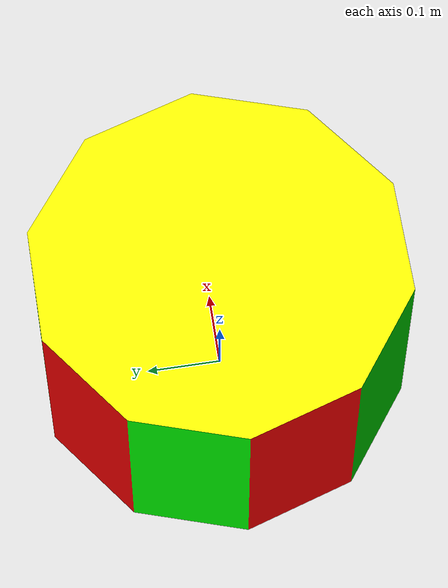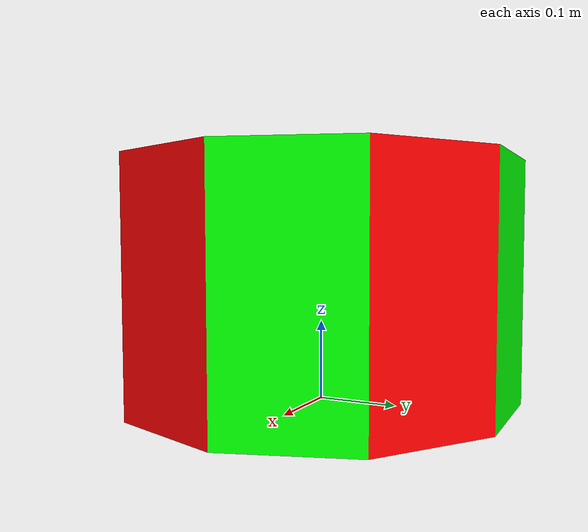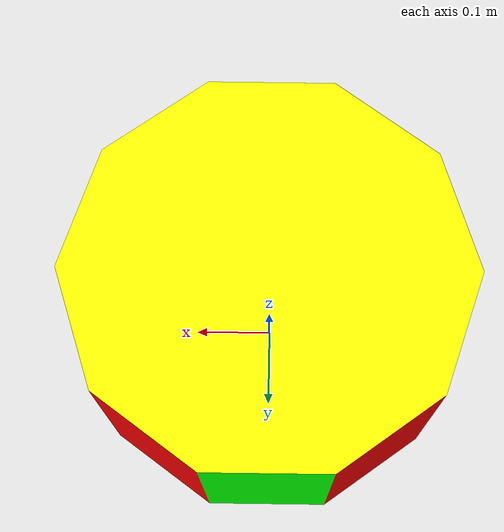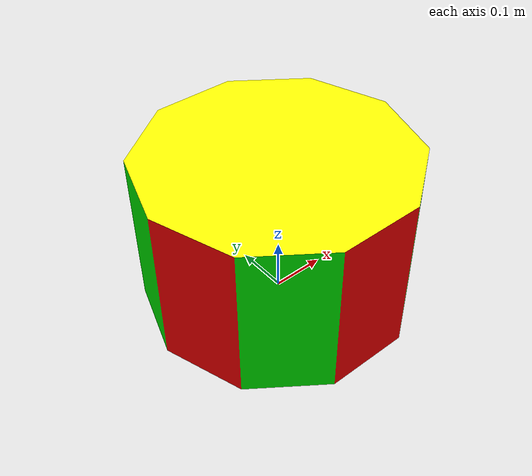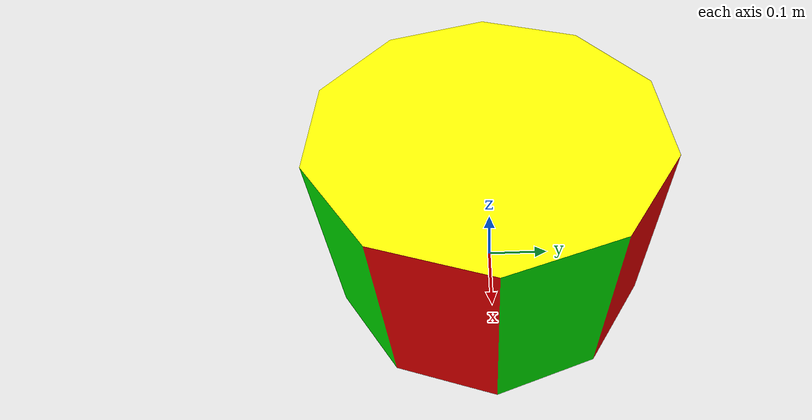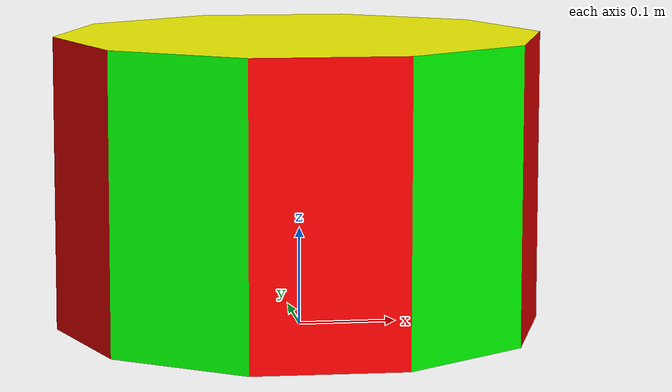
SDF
<?xml version="1.0"?>
<sdf version="1.6">
  <model name="10prism_basic">
    <static>true</static>
    <pose>0 0 0 0 0 0</pose>
    <link name="link1">

      <visual name="visual1">
        <geometry>
          <mesh>
            <uri>model://10prism_basic/meshes/10prism_basic.DAE</uri>
   	    <scale>1 1 1</scale>
          </mesh>
        </geometry>
      </visual>

    </link>
  </model>
</sdf>
